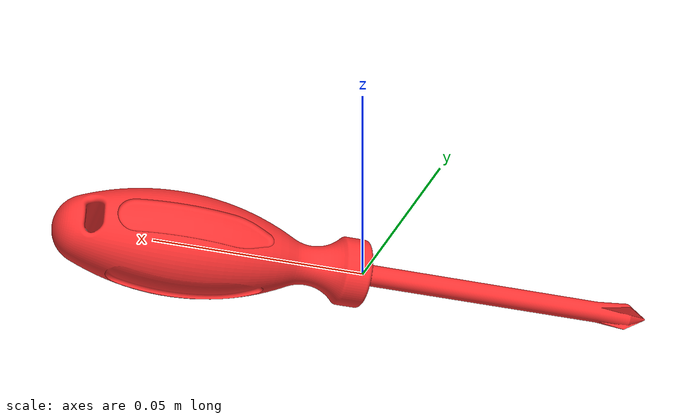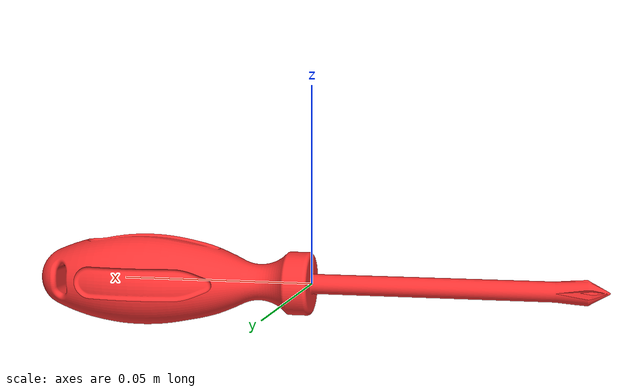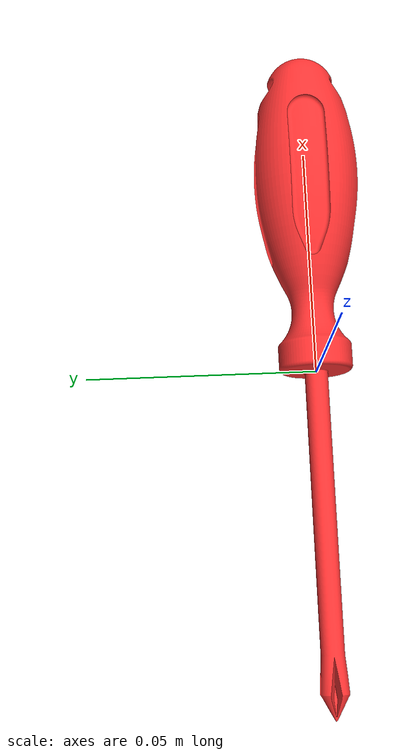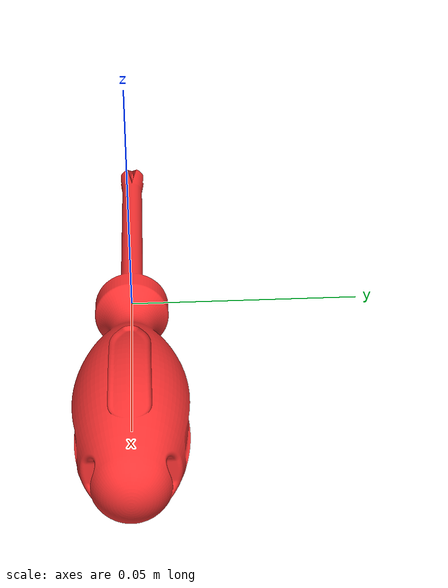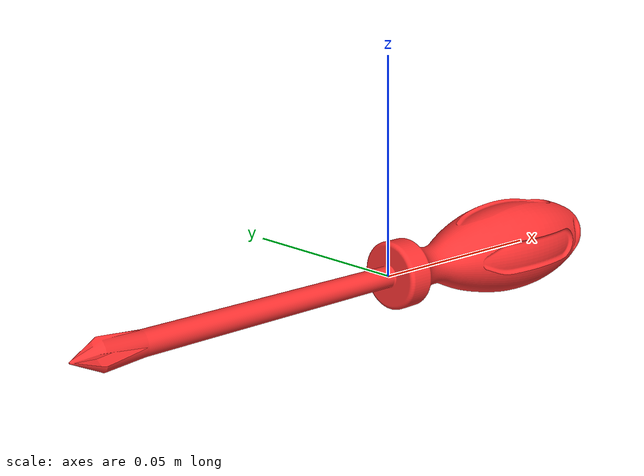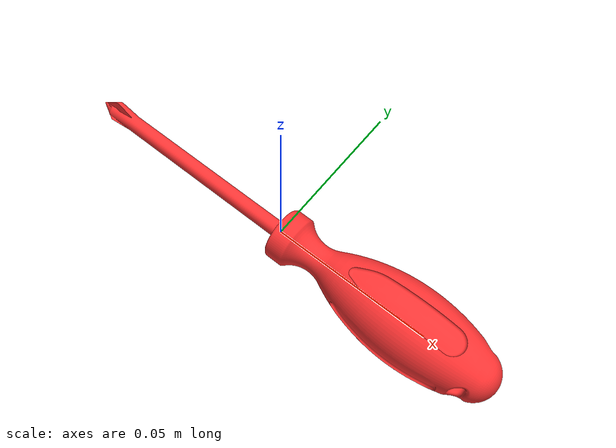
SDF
<?xml version="1.0" ?>
<sdf version="1.4">
  <model name="challenge_screwdriver">
    <static>false</static>
    <link name="link">
      <inertial>
        <mass>0.05</mass>
        <inertia>
          <ixx>0.000052083</ixx>
          <ixy>0.0</ixy>
          <ixz>0.0</ixz>
          <iyy>0.000052083</iyy>
          <iyz>0.0</iyz>
          <izz>0.000020833</izz>
        </inertia>
      </inertial>

      <!-- Collision -->
      <collision name="collision">
        <geometry>
          <mesh>
            <uri>model://challenge_screwdriver/mesh/challenge_screwdriver.stl</uri>
            <scale>0.001 0.001 0.001</scale>
          </mesh>
        </geometry>
        <surface>
          <friction>
            <ode>
              <mu>30.0</mu>
              <mu2>30.0</mu2>
              <!-- fdir1 should typically be a unit vector; (0 0 0) is not valid -->
              <fdir1>1 0 0</fdir1>
            </ode>
          </friction>
          <contact>
            <ode>
              <kp>1000000.0</kp>
              <kd>100.0</kd>
              <min_depth>0.0025</min_depth>
              <max_vel>1.0</max_vel>
            </ode>
          </contact>
        </surface>
      </collision>

      <!-- Visual -->
      <visual name="visual">
        <geometry>
          <mesh>
            <uri>model://challenge_screwdriver/mesh/challenge_screwdriver.stl</uri>
            <scale>0.001 0.001 0.001</scale>
          </mesh>
        </geometry>
        <material>
          <ambient>0.8 0.1 0.1 1</ambient>   <!-- Dark red ambient -->
          <diffuse>1.0 0.2 0.2 1</diffuse>   <!-- Bright red diffuse -->
          <specular>0.5 0.5 0.5 1</specular> <!-- Some shininess -->
          <emissive>0 0 0 1</emissive>       <!-- No emission -->
        </material>
      </visual>

      <!-- Other physics properties -->
      <velocity_decay>
        <linear>0.0</linear>
        <angular>0.0</angular>
      </velocity_decay>
      <self_collide>false</self_collide>
      <kinematic>false</kinematic>
      <gravity>true</gravity>

    </link>
  </model>
</sdf>
